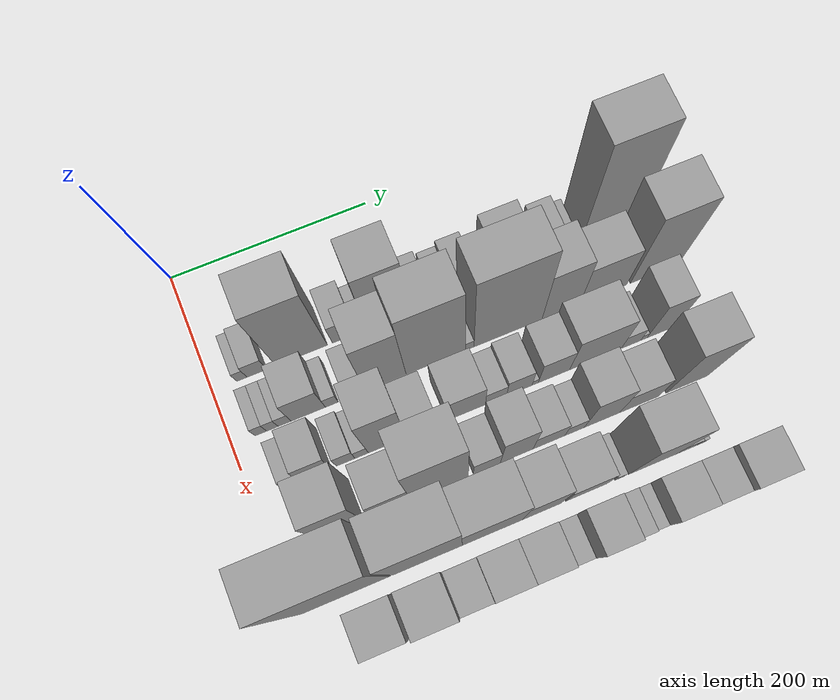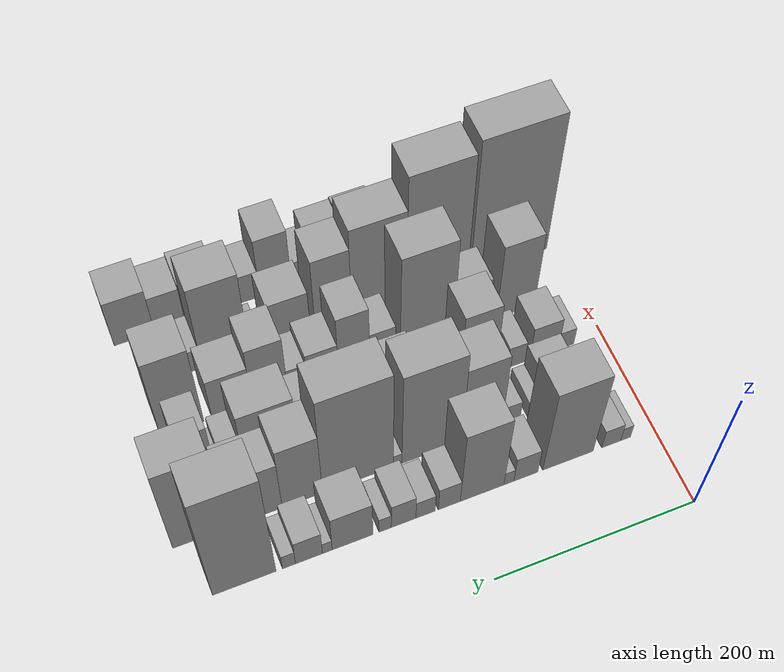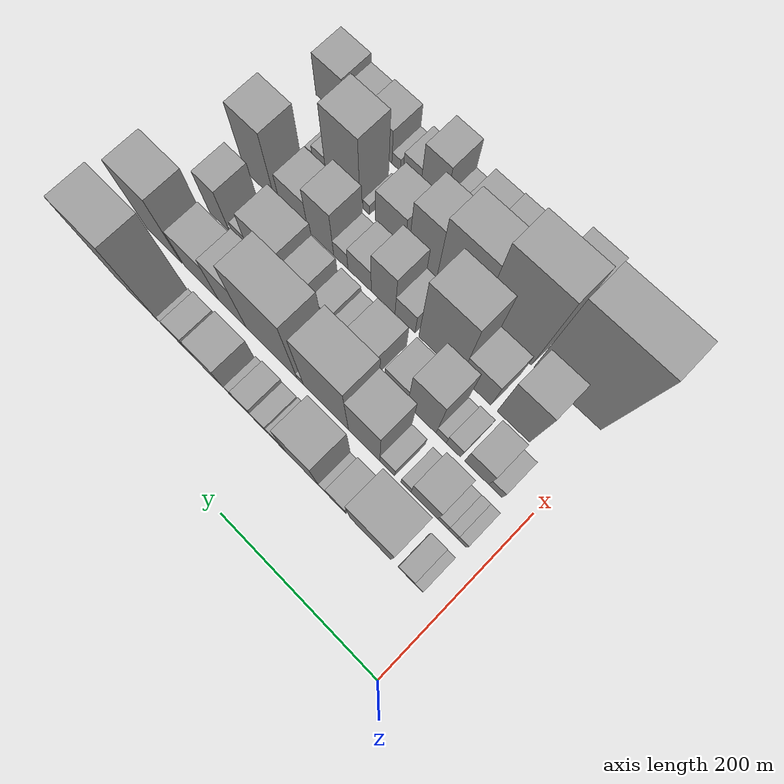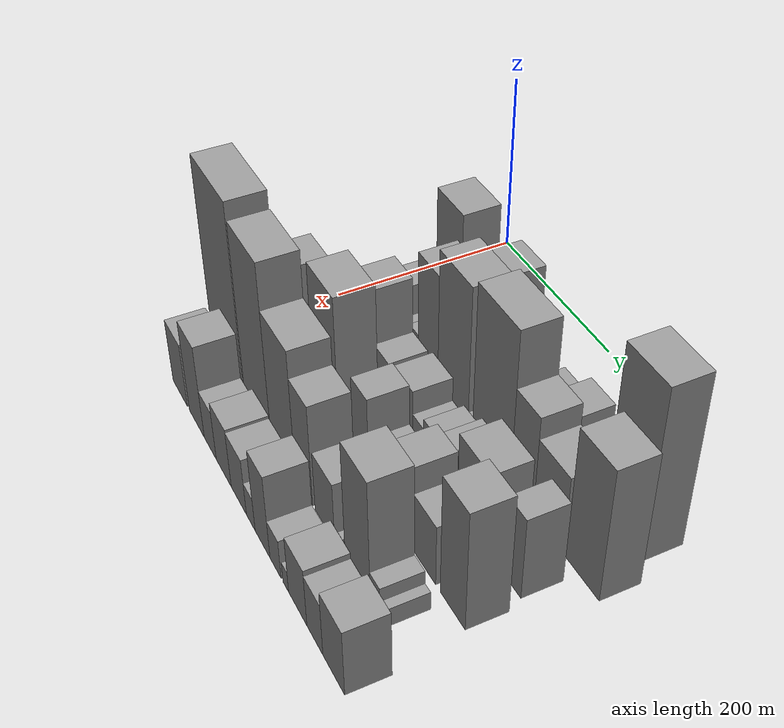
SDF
<sdf version="1.6">
 <world name="default">
  <model name="building_27">
   <static>1</static>
   <pose>100.0000 29.5351 0 0.000000 0.000000 0.000000</pose>
   <link name="link">
    <pose>0 0 12.00 0 0 0</pose>
    <collision name="collision"><geometry><box><size>40.0000 10.1037 24.0000</size></box></geometry></collision>
    <visual name="visual">
     <cast_shadows>0</cast_shadows>
     <geometry><box><size>40.0000 10.1037 24.0000</size></box></geometry>
     <material>
      <script>
       <uri>model://grey_wall/materials/scripts</uri>
       <uri>model://grey_wall/materials/textures</uri>
       <name>vrc/grey_wall</name>
      </script>
     </material>
    </visual>
   </link>
  </model>
  <model name="building_28">
   <static>1</static>
   <pose>100.0000 44.4117 0 0.000000 0.000000 0.000000</pose>
   <link name="link">
    <pose>0 0 16.50 0 0 0</pose>
    <collision name="collision"><geometry><box><size>40.0000 19.6494 33.0000</size></box></geometry></collision>
    <visual name="visual">
     <cast_shadows>0</cast_shadows>
     <geometry><box><size>40.0000 19.6494 33.0000</size></box></geometry>
     <material>
      <script>
       <uri>model://grey_wall/materials/scripts</uri>
       <uri>model://grey_wall/materials/textures</uri>
       <name>vrc/grey_wall</name>
      </script>
     </material>
    </visual>
   </link>
  </model>
  <model name="building_29">
   <static>1</static>
   <pose>100.0000 89.0298 0 0.000000 0.000000 0.000000</pose>
   <link name="link">
    <pose>0 0 73.50 0 0 0</pose>
    <collision name="collision"><geometry><box><size>40.0000 51.5868 147.0000</size></box></geometry></collision>
    <visual name="visual">
     <cast_shadows>0</cast_shadows>
     <geometry><box><size>40.0000 51.5868 147.0000</size></box></geometry>
     <material>
      <script>
       <uri>model://grey_wall/materials/scripts</uri>
       <uri>model://grey_wall/materials/textures</uri>
       <name>vrc/grey_wall</name>
      </script>
     </material>
    </visual>
   </link>
  </model>
  <model name="building_30">
   <static>1</static>
   <pose>100.0000 131.9228 0 0.000000 0.000000 0.000000</pose>
   <link name="link">
    <pose>0 0 22.50 0 0 0</pose>
    <collision name="collision"><geometry><box><size>40.0000 24.1992 45.0000</size></box></geometry></collision>
    <visual name="visual">
     <cast_shadows>0</cast_shadows>
     <geometry><box><size>40.0000 24.1992 45.0000</size></box></geometry>
     <material>
      <script>
       <uri>model://grey_wall/materials/scripts</uri>
       <uri>model://grey_wall/materials/textures</uri>
       <name>vrc/grey_wall</name>
      </script>
     </material>
    </visual>
   </link>
  </model>
  <model name="building_31">
   <static>1</static>
   <pose>100.0000 149.0816 0 0.000000 0.000000 0.000000</pose>
   <link name="link">
    <pose>0 0 12.00 0 0 0</pose>
    <collision name="collision"><geometry><box><size>40.0000 10.1185 24.0000</size></box></geometry></collision>
    <visual name="visual">
     <cast_shadows>0</cast_shadows>
     <geometry><box><size>40.0000 10.1185 24.0000</size></box></geometry>
     <material>
      <script>
       <uri>model://grey_wall/materials/scripts</uri>
       <uri>model://grey_wall/materials/textures</uri>
       <name>vrc/grey_wall</name>
      </script>
     </material>
    </visual>
   </link>
  </model>
  <model name="building_32">
   <static>1</static>
   <pose>100.0000 175.8906 0 0.000000 0.000000 0.000000</pose>
   <link name="link">
    <pose>0 0 66.00 0 0 0</pose>
    <collision name="collision"><geometry><box><size>40.0000 43.4994 132.0000</size></box></geometry></collision>
    <visual name="visual">
     <cast_shadows>0</cast_shadows>
     <geometry><box><size>40.0000 43.4994 132.0000</size></box></geometry>
     <material>
      <script>
       <uri>model://grey_wall/materials/scripts</uri>
       <uri>model://grey_wall/materials/textures</uri>
       <name>vrc/grey_wall</name>
      </script>
     </material>
    </visual>
   </link>
  </model>
  <model name="building_33">
   <static>1</static>
   <pose>100.0000 208.5232 0 0.000000 0.000000 0.000000</pose>
   <link name="link">
    <pose>0 0 21.00 0 0 0</pose>
    <collision name="collision"><geometry><box><size>40.0000 21.7659 42.0000</size></box></geometry></collision>
    <visual name="visual">
     <cast_shadows>0</cast_shadows>
     <geometry><box><size>40.0000 21.7659 42.0000</size></box></geometry>
     <material>
      <script>
       <uri>model://grey_wall/materials/scripts</uri>
       <uri>model://grey_wall/materials/textures</uri>
       <name>vrc/grey_wall</name>
      </script>
     </material>
    </visual>
   </link>
  </model>
  <model name="building_34">
   <static>1</static>
   <pose>100.0000 231.9285 0 0.000000 0.000000 0.000000</pose>
   <link name="link">
    <pose>0 0 16.50 0 0 0</pose>
    <collision name="collision"><geometry><box><size>40.0000 19.0447 33.0000</size></box></geometry></collision>
    <visual name="visual">
     <cast_shadows>0</cast_shadows>
     <geometry><box><size>40.0000 19.0447 33.0000</size></box></geometry>
     <material>
      <script>
       <uri>model://grey_wall/materials/scripts</uri>
       <uri>model://grey_wall/materials/textures</uri>
       <name>vrc/grey_wall</name>
      </script>
     </material>
    </visual>
   </link>
  </model>
  <model name="building_35">
   <static>1</static>
   <pose>100.0000 253.4220 0 0.000000 0.000000 0.000000</pose>
   <link name="link">
    <pose>0 0 22.50 0 0 0</pose>
    <collision name="collision"><geometry><box><size>40.0000 23.9424 45.0000</size></box></geometry></collision>
    <visual name="visual">
     <cast_shadows>0</cast_shadows>
     <geometry><box><size>40.0000 23.9424 45.0000</size></box></geometry>
     <material>
      <script>
       <uri>model://grey_wall/materials/scripts</uri>
       <uri>model://grey_wall/materials/textures</uri>
       <name>vrc/grey_wall</name>
      </script>
     </material>
    </visual>
   </link>
  </model>
  <model name="building_36">
   <static>1</static>
   <pose>100.0000 271.3329 0 0.000000 0.000000 0.000000</pose>
   <link name="link">
    <pose>0 0 13.50 0 0 0</pose>
    <collision name="collision"><geometry><box><size>40.0000 11.8794 27.0000</size></box></geometry></collision>
    <visual name="visual">
     <cast_shadows>0</cast_shadows>
     <geometry><box><size>40.0000 11.8794 27.0000</size></box></geometry>
     <material>
      <script>
       <uri>model://grey_wall/materials/scripts</uri>
       <uri>model://grey_wall/materials/textures</uri>
       <name>vrc/grey_wall</name>
      </script>
     </material>
    </visual>
   </link>
  </model>
  <model name="building_37">
   <static>1</static>
   <pose>100.0000 302.8294 0 0.000000 0.000000 0.000000</pose>
   <link name="link">
    <pose>0 0 33.00 0 0 0</pose>
    <collision name="collision"><geometry><box><size>40.0000 39.1136 66.0000</size></box></geometry></collision>
    <visual name="visual">
     <cast_shadows>0</cast_shadows>
     <geometry><box><size>40.0000 39.1136 66.0000</size></box></geometry>
     <material>
      <script>
       <uri>model://grey_wall/materials/scripts</uri>
       <uri>model://grey_wall/materials/textures</uri>
       <name>vrc/grey_wall</name>
      </script>
     </material>
    </visual>
   </link>
  </model>
  <model name="building_38">
   <static>1</static>
   <pose>100.0000 327.0356 0 0.000000 0.000000 0.000000</pose>
   <link name="link">
    <pose>0 0 10.50 0 0 0</pose>
    <collision name="collision"><geometry><box><size>40.0000 9.2986 21.0000</size></box></geometry></collision>
    <visual name="visual">
     <cast_shadows>0</cast_shadows>
     <geometry><box><size>40.0000 9.2986 21.0000</size></box></geometry>
     <material>
      <script>
       <uri>model://grey_wall/materials/scripts</uri>
       <uri>model://grey_wall/materials/textures</uri>
       <name>vrc/grey_wall</name>
      </script>
     </material>
    </visual>
   </link>
  </model>
  <model name="building_39">
   <static>1</static>
   <pose>100.0000 344.4830 0 0.000000 0.000000 0.000000</pose>
   <link name="link">
    <pose>0 0 22.50 0 0 0</pose>
    <collision name="collision"><geometry><box><size>40.0000 25.5962 45.0000</size></box></geometry></collision>
    <visual name="visual">
     <cast_shadows>0</cast_shadows>
     <geometry><box><size>40.0000 25.5962 45.0000</size></box></geometry>
     <material>
      <script>
       <uri>model://grey_wall/materials/scripts</uri>
       <uri>model://grey_wall/materials/textures</uri>
       <name>vrc/grey_wall</name>
      </script>
     </material>
    </visual>
   </link>
  </model>
  <model name="building_40">
   <static>1</static>
   <pose>100.0000 363.4777 0 0.000000 0.000000 0.000000</pose>
   <link name="link">
    <pose>0 0 13.50 0 0 0</pose>
    <collision name="collision"><geometry><box><size>40.0000 12.3933 27.0000</size></box></geometry></collision>
    <visual name="visual">
     <cast_shadows>0</cast_shadows>
     <geometry><box><size>40.0000 12.3933 27.0000</size></box></geometry>
     <material>
      <script>
       <uri>model://grey_wall/materials/scripts</uri>
       <uri>model://grey_wall/materials/textures</uri>
       <name>vrc/grey_wall</name>
      </script>
     </material>
    </visual>
   </link>
  </model>
  <model name="building_41">
   <static>1</static>
   <pose>100.0000 405.3680 0 0.000000 0.000000 0.000000</pose>
   <link name="link">
    <pose>0 0 97.50 0 0 0</pose>
    <collision name="collision"><geometry><box><size>40.0000 59.3873 195.0000</size></box></geometry></collision>
    <visual name="visual">
     <cast_shadows>0</cast_shadows>
     <geometry><box><size>40.0000 59.3873 195.0000</size></box></geometry>
     <material>
      <script>
       <uri>model://grey_wall/materials/scripts</uri>
       <uri>model://grey_wall/materials/textures</uri>
       <name>vrc/grey_wall</name>
      </script>
     </material>
    </visual>
   </link>
  </model>
  <model name="building_81">
   <static>1</static>
   <pose>155.0000 28.5646 0 0.000000 0.000000 0.000000</pose>
   <link name="link">
    <pose>0 0 13.50 0 0 0</pose>
    <collision name="collision"><geometry><box><size>40.0000 11.2410 27.0000</size></box></geometry></collision>
    <visual name="visual">
     <cast_shadows>0</cast_shadows>
     <geometry><box><size>40.0000 11.2410 27.0000</size></box></geometry>
     <material>
      <script>
       <uri>model://grey_wall/materials/scripts</uri>
       <uri>model://grey_wall/materials/textures</uri>
       <name>vrc/grey_wall</name>
      </script>
     </material>
    </visual>
   </link>
  </model>
  <model name="building_82">
   <static>1</static>
   <pose>155.0000 39.7942 0 0.000000 0.000000 0.000000</pose>
   <link name="link">
    <pose>0 0 13.50 0 0 0</pose>
    <collision name="collision"><geometry><box><size>40.0000 11.2180 27.0000</size></box></geometry></collision>
    <visual name="visual">
     <cast_shadows>0</cast_shadows>
     <geometry><box><size>40.0000 11.2180 27.0000</size></box></geometry>
     <material>
      <script>
       <uri>model://grey_wall/materials/scripts</uri>
       <uri>model://grey_wall/materials/textures</uri>
       <name>vrc/grey_wall</name>
      </script>
     </material>
    </visual>
   </link>
  </model>
  <model name="building_83">
   <static>1</static>
   <pose>155.0000 51.8045 0 0.000000 0.000000 0.000000</pose>
   <link name="link">
    <pose>0 0 13.50 0 0 0</pose>
    <collision name="collision"><geometry><box><size>40.0000 12.8027 27.0000</size></box></geometry></collision>
    <visual name="visual">
     <cast_shadows>0</cast_shadows>
     <geometry><box><size>40.0000 12.8027 27.0000</size></box></geometry>
     <material>
      <script>
       <uri>model://grey_wall/materials/scripts</uri>
       <uri>model://grey_wall/materials/textures</uri>
       <name>vrc/grey_wall</name>
      </script>
     </material>
    </visual>
   </link>
  </model>
  <model name="building_84">
   <static>1</static>
   <pose>155.0000 75.0886 0 0.000000 0.000000 0.000000</pose>
   <link name="link">
    <pose>0 0 31.50 0 0 0</pose>
    <collision name="collision"><geometry><box><size>40.0000 33.7656 63.0000</size></box></geometry></collision>
    <visual name="visual">
     <cast_shadows>0</cast_shadows>
     <geometry><box><size>40.0000 33.7656 63.0000</size></box></geometry>
     <material>
      <script>
       <uri>model://grey_wall/materials/scripts</uri>
       <uri>model://grey_wall/materials/textures</uri>
       <name>vrc/grey_wall</name>
      </script>
     </material>
    </visual>
   </link>
  </model>
  <model name="building_85">
   <static>1</static>
   <pose>155.0000 98.3248 0 0.000000 0.000000 0.000000</pose>
   <link name="link">
    <pose>0 0 13.50 0 0 0</pose>
    <collision name="collision"><geometry><box><size>40.0000 12.7068 27.0000</size></box></geometry></collision>
    <visual name="visual">
     <cast_shadows>0</cast_shadows>
     <geometry><box><size>40.0000 12.7068 27.0000</size></box></geometry>
     <material>
      <script>
       <uri>model://grey_wall/materials/scripts</uri>
       <uri>model://grey_wall/materials/textures</uri>
       <name>vrc/grey_wall</name>
      </script>
     </material>
    </visual>
   </link>
  </model>
  <model name="building_86">
   <static>1</static>
   <pose>155.0000 122.1822 0 0.000000 0.000000 0.000000</pose>
   <link name="link">
    <pose>0 0 18.00 0 0 0</pose>
    <collision name="collision"><geometry><box><size>40.0000 19.0079 36.0000</size></box></geometry></collision>
    <visual name="visual">
     <cast_shadows>0</cast_shadows>
     <geometry><box><size>40.0000 19.0079 36.0000</size></box></geometry>
     <material>
      <script>
       <uri>model://grey_wall/materials/scripts</uri>
       <uri>model://grey_wall/materials/textures</uri>
       <name>vrc/grey_wall</name>
      </script>
     </material>
    </visual>
   </link>
  </model>
  <model name="building_87">
   <static>1</static>
   <pose>155.0000 152.0349 0 0.000000 0.000000 0.000000</pose>
   <link name="link">
    <pose>0 0 67.50 0 0 0</pose>
    <collision name="collision"><geometry><box><size>40.0000 40.6977 135.0000</size></box></geometry></collision>
    <visual name="visual">
     <cast_shadows>0</cast_shadows>
     <geometry><box><size>40.0000 40.6977 135.0000</size></box></geometry>
     <material>
      <script>
       <uri>model://grey_wall/materials/scripts</uri>
       <uri>model://grey_wall/materials/textures</uri>
       <name>vrc/grey_wall</name>
      </script>
     </material>
    </visual>
   </link>
  </model>
  <model name="building_88">
   <static>1</static>
   <pose>155.0000 202.4002 0 0.000000 0.000000 0.000000</pose>
   <link name="link">
    <pose>0 0 82.50 0 0 0</pose>
    <collision name="collision"><geometry><box><size>40.0000 60.0328 165.0000</size></box></geometry></collision>
    <visual name="visual">
     <cast_shadows>0</cast_shadows>
     <geometry><box><size>40.0000 60.0328 165.0000</size></box></geometry>
     <material>
      <script>
       <uri>model://grey_wall/materials/scripts</uri>
       <uri>model://grey_wall/materials/textures</uri>
       <name>vrc/grey_wall</name>
      </script>
     </material>
    </visual>
   </link>
  </model>
  <model name="building_89">
   <static>1</static>
   <pose>155.0000 236.7056 0 0.000000 0.000000 0.000000</pose>
   <link name="link">
    <pose>0 0 10.50 0 0 0</pose>
    <collision name="collision"><geometry><box><size>40.0000 8.5781 21.0000</size></box></geometry></collision>
    <visual name="visual">
     <cast_shadows>0</cast_shadows>
     <geometry><box><size>40.0000 8.5781 21.0000</size></box></geometry>
     <material>
      <script>
       <uri>model://grey_wall/materials/scripts</uri>
       <uri>model://grey_wall/materials/textures</uri>
       <name>vrc/grey_wall</name>
      </script>
     </material>
    </visual>
   </link>
  </model>
  <model name="building_90">
   <static>1</static>
   <pose>155.0000 275.9135 0 0.000000 0.000000 0.000000</pose>
   <link name="link">
    <pose>0 0 88.50 0 0 0</pose>
    <collision name="collision"><geometry><box><size>40.0000 69.8377 177.0000</size></box></geometry></collision>
    <visual name="visual">
     <cast_shadows>0</cast_shadows>
     <geometry><box><size>40.0000 69.8377 177.0000</size></box></geometry>
     <material>
      <script>
       <uri>model://grey_wall/materials/scripts</uri>
       <uri>model://grey_wall/materials/textures</uri>
       <name>vrc/grey_wall</name>
      </script>
     </material>
    </visual>
   </link>
  </model>
  <model name="building_91">
   <static>1</static>
   <pose>155.0000 330.3484 0 0.000000 0.000000 0.000000</pose>
   <link name="link">
    <pose>0 0 57.00 0 0 0</pose>
    <collision name="collision"><geometry><box><size>40.0000 39.0320 114.0000</size></box></geometry></collision>
    <visual name="visual">
     <cast_shadows>0</cast_shadows>
     <geometry><box><size>40.0000 39.0320 114.0000</size></box></geometry>
     <material>
      <script>
       <uri>model://grey_wall/materials/scripts</uri>
       <uri>model://grey_wall/materials/textures</uri>
       <name>vrc/grey_wall</name>
      </script>
     </material>
    </visual>
   </link>
  </model>
  <model name="building_92">
   <static>1</static>
   <pose>155.0000 374.4311 0 0.000000 0.000000 0.000000</pose>
   <link name="link">
    <pose>0 0 45.00 0 0 0</pose>
    <collision name="collision"><geometry><box><size>40.0000 49.1333 90.0000</size></box></geometry></collision>
    <visual name="visual">
     <cast_shadows>0</cast_shadows>
     <geometry><box><size>40.0000 49.1333 90.0000</size></box></geometry>
     <material>
      <script>
       <uri>model://grey_wall/materials/scripts</uri>
       <uri>model://grey_wall/materials/textures</uri>
       <name>vrc/grey_wall</name>
      </script>
     </material>
    </visual>
   </link>
  </model>
  <model name="building_93">
   <static>1</static>
   <pose>155.0000 428.5436 0 0.000000 0.000000 0.000000</pose>
   <link name="link">
    <pose>0 0 75.00 0 0 0</pose>
    <collision name="collision"><geometry><box><size>40.0000 51.0916 150.0000</size></box></geometry></collision>
    <visual name="visual">
     <cast_shadows>0</cast_shadows>
     <geometry><box><size>40.0000 51.0916 150.0000</size></box></geometry>
     <material>
      <script>
       <uri>model://grey_wall/materials/scripts</uri>
       <uri>model://grey_wall/materials/textures</uri>
       <name>vrc/grey_wall</name>
      </script>
     </material>
    </visual>
   </link>
  </model>
  <model name="building_129">
   <static>1</static>
   <pose>210.0000 38.2741 0 0.000000 0.000000 0.000000</pose>
   <link name="link">
    <pose>0 0 15.00 0 0 0</pose>
    <collision name="collision"><geometry><box><size>40.0000 16.6015 30.0000</size></box></geometry></collision>
    <visual name="visual">
     <cast_shadows>0</cast_shadows>
     <geometry><box><size>40.0000 16.6015 30.0000</size></box></geometry>
     <material>
      <script>
       <uri>model://grey_wall/materials/scripts</uri>
       <uri>model://grey_wall/materials/textures</uri>
       <name>vrc/grey_wall</name>
      </script>
     </material>
    </visual>
   </link>
  </model>
  <model name="building_130">
   <static>1</static>
   <pose>210.0000 61.6853 0 0.000000 0.000000 0.000000</pose>
   <link name="link">
    <pose>0 0 28.50 0 0 0</pose>
    <collision name="collision"><geometry><box><size>40.0000 30.2209 57.0000</size></box></geometry></collision>
    <visual name="visual">
     <cast_shadows>0</cast_shadows>
     <geometry><box><size>40.0000 30.2209 57.0000</size></box></geometry>
     <material>
      <script>
       <uri>model://grey_wall/materials/scripts</uri>
       <uri>model://grey_wall/materials/textures</uri>
       <name>vrc/grey_wall</name>
      </script>
     </material>
    </visual>
   </link>
  </model>
  <model name="building_131">
   <static>1</static>
   <pose>210.0000 90.9158 0 0.000000 0.000000 0.000000</pose>
   <link name="link">
    <pose>0 0 18.00 0 0 0</pose>
    <collision name="collision"><geometry><box><size>40.0000 18.2402 36.0000</size></box></geometry></collision>
    <visual name="visual">
     <cast_shadows>0</cast_shadows>
     <geometry><box><size>40.0000 18.2402 36.0000</size></box></geometry>
     <material>
      <script>
       <uri>model://grey_wall/materials/scripts</uri>
       <uri>model://grey_wall/materials/textures</uri>
       <name>vrc/grey_wall</name>
      </script>
     </material>
    </visual>
   </link>
  </model>
  <model name="building_132">
   <static>1</static>
   <pose>210.0000 106.5720 0 0.000000 0.000000 0.000000</pose>
   <link name="link">
    <pose>0 0 13.50 0 0 0</pose>
    <collision name="collision"><geometry><box><size>40.0000 13.0722 27.0000</size></box></geometry></collision>
    <visual name="visual">
     <cast_shadows>0</cast_shadows>
     <geometry><box><size>40.0000 13.0722 27.0000</size></box></geometry>
     <material>
      <script>
       <uri>model://grey_wall/materials/scripts</uri>
       <uri>model://grey_wall/materials/textures</uri>
       <name>vrc/grey_wall</name>
      </script>
     </material>
    </visual>
   </link>
  </model>
  <model name="building_133">
   <static>1</static>
   <pose>210.0000 131.6312 0 0.000000 0.000000 0.000000</pose>
   <link name="link">
    <pose>0 0 61.50 0 0 0</pose>
    <collision name="collision"><geometry><box><size>40.0000 37.0461 123.0000</size></box></geometry></collision>
    <visual name="visual">
     <cast_shadows>0</cast_shadows>
     <geometry><box><size>40.0000 37.0461 123.0000</size></box></geometry>
     <material>
      <script>
       <uri>model://grey_wall/materials/scripts</uri>
       <uri>model://grey_wall/materials/textures</uri>
       <name>vrc/grey_wall</name>
      </script>
     </material>
    </visual>
   </link>
  </model>
  <model name="building_134">
   <static>1</static>
   <pose>210.0000 165.3516 0 0.000000 0.000000 0.000000</pose>
   <link name="link">
    <pose>0 0 30.00 0 0 0</pose>
    <collision name="collision"><geometry><box><size>40.0000 30.3948 60.0000</size></box></geometry></collision>
    <visual name="visual">
     <cast_shadows>0</cast_shadows>
     <geometry><box><size>40.0000 30.3948 60.0000</size></box></geometry>
     <material>
      <script>
       <uri>model://grey_wall/materials/scripts</uri>
       <uri>model://grey_wall/materials/textures</uri>
       <name>vrc/grey_wall</name>
      </script>
     </material>
    </visual>
   </link>
  </model>
  <model name="building_135">
   <static>1</static>
   <pose>210.0000 209.8594 0 0.000000 0.000000 0.000000</pose>
   <link name="link">
    <pose>0 0 33.00 0 0 0</pose>
    <collision name="collision"><geometry><box><size>40.0000 38.6208 66.0000</size></box></geometry></collision>
    <visual name="visual">
     <cast_shadows>0</cast_shadows>
     <geometry><box><size>40.0000 38.6208 66.0000</size></box></geometry>
     <material>
      <script>
       <uri>model://grey_wall/materials/scripts</uri>
       <uri>model://grey_wall/materials/textures</uri>
       <name>vrc/grey_wall</name>
      </script>
     </material>
    </visual>
   </link>
  </model>
  <model name="building_136">
   <static>1</static>
   <pose>210.0000 239.8237 0 0.000000 0.000000 0.000000</pose>
   <link name="link">
    <pose>0 0 19.50 0 0 0</pose>
    <collision name="collision"><geometry><box><size>40.0000 21.3077 39.0000</size></box></geometry></collision>
    <visual name="visual">
     <cast_shadows>0</cast_shadows>
     <geometry><box><size>40.0000 21.3077 39.0000</size></box></geometry>
     <material>
      <script>
       <uri>model://grey_wall/materials/scripts</uri>
       <uri>model://grey_wall/materials/textures</uri>
       <name>vrc/grey_wall</name>
      </script>
     </material>
    </visual>
   </link>
  </model>
  <model name="building_137">
   <static>1</static>
   <pose>210.0000 263.3612 0 0.000000 0.000000 0.000000</pose>
   <link name="link">
    <pose>0 0 25.50 0 0 0</pose>
    <collision name="collision"><geometry><box><size>40.0000 25.7672 51.0000</size></box></geometry></collision>
    <visual name="visual">
     <cast_shadows>0</cast_shadows>
     <geometry><box><size>40.0000 25.7672 51.0000</size></box></geometry>
     <material>
      <script>
       <uri>model://grey_wall/materials/scripts</uri>
       <uri>model://grey_wall/materials/textures</uri>
       <name>vrc/grey_wall</name>
      </script>
     </material>
    </visual>
   </link>
  </model>
  <model name="building_138">
   <static>1</static>
   <pose>210.0000 279.4580 0 0.000000 0.000000 0.000000</pose>
   <link name="link">
    <pose>0 0 7.50 0 0 0</pose>
    <collision name="collision"><geometry><box><size>40.0000 6.4266 15.0000</size></box></geometry></collision>
    <visual name="visual">
     <cast_shadows>0</cast_shadows>
     <geometry><box><size>40.0000 6.4266 15.0000</size></box></geometry>
     <material>
      <script>
       <uri>model://grey_wall/materials/scripts</uri>
       <uri>model://grey_wall/materials/textures</uri>
       <name>vrc/grey_wall</name>
      </script>
     </material>
    </visual>
   </link>
  </model>
  <model name="building_139">
   <static>1</static>
   <pose>210.0000 298.5849 0 0.000000 0.000000 0.000000</pose>
   <link name="link">
    <pose>0 0 31.50 0 0 0</pose>
    <collision name="collision"><geometry><box><size>40.0000 31.8272 63.0000</size></box></geometry></collision>
    <visual name="visual">
     <cast_shadows>0</cast_shadows>
     <geometry><box><size>40.0000 31.8272 63.0000</size></box></geometry>
     <material>
      <script>
       <uri>model://grey_wall/materials/scripts</uri>
       <uri>model://grey_wall/materials/textures</uri>
       <name>vrc/grey_wall</name>
      </script>
     </material>
    </visual>
   </link>
  </model>
  <model name="building_140">
   <static>1</static>
   <pose>210.0000 341.1894 0 0.000000 0.000000 0.000000</pose>
   <link name="link">
    <pose>0 0 45.00 0 0 0</pose>
    <collision name="collision"><geometry><box><size>40.0000 53.3818 90.0000</size></box></geometry></collision>
    <visual name="visual">
     <cast_shadows>0</cast_shadows>
     <geometry><box><size>40.0000 53.3818 90.0000</size></box></geometry>
     <material>
      <script>
       <uri>model://grey_wall/materials/scripts</uri>
       <uri>model://grey_wall/materials/textures</uri>
       <name>vrc/grey_wall</name>
      </script>
     </material>
    </visual>
   </link>
  </model>
  <model name="building_141">
   <static>1</static>
   <pose>210.0000 377.9662 0 0.000000 0.000000 0.000000</pose>
   <link name="link">
    <pose>0 0 18.00 0 0 0</pose>
    <collision name="collision"><geometry><box><size>40.0000 20.1720 36.0000</size></box></geometry></collision>
    <visual name="visual">
     <cast_shadows>0</cast_shadows>
     <geometry><box><size>40.0000 20.1720 36.0000</size></box></geometry>
     <material>
      <script>
       <uri>model://grey_wall/materials/scripts</uri>
       <uri>model://grey_wall/materials/textures</uri>
       <name>vrc/grey_wall</name>
      </script>
     </material>
    </visual>
   </link>
  </model>
  <model name="building_142">
   <static>1</static>
   <pose>210.0000 391.2594 0 0.000000 0.000000 0.000000</pose>
   <link name="link">
    <pose>0 0 7.50 0 0 0</pose>
    <collision name="collision"><geometry><box><size>40.0000 6.4143 15.0000</size></box></geometry></collision>
    <visual name="visual">
     <cast_shadows>0</cast_shadows>
     <geometry><box><size>40.0000 6.4143 15.0000</size></box></geometry>
     <material>
      <script>
       <uri>model://grey_wall/materials/scripts</uri>
       <uri>model://grey_wall/materials/textures</uri>
       <name>vrc/grey_wall</name>
      </script>
     </material>
    </visual>
   </link>
  </model>
  <model name="building_143">
   <static>1</static>
   <pose>210.0000 408.9471 0 0.000000 0.000000 0.000000</pose>
   <link name="link">
    <pose>0 0 46.50 0 0 0</pose>
    <collision name="collision"><geometry><box><size>40.0000 28.9612 93.0000</size></box></geometry></collision>
    <visual name="visual">
     <cast_shadows>0</cast_shadows>
     <geometry><box><size>40.0000 28.9612 93.0000</size></box></geometry>
     <material>
      <script>
       <uri>model://grey_wall/materials/scripts</uri>
       <uri>model://grey_wall/materials/textures</uri>
       <name>vrc/grey_wall</name>
      </script>
     </material>
    </visual>
   </link>
  </model>
  <model name="building_183">
   <static>1</static>
   <pose>265.0000 66.6333 0 0.000000 0.000000 0.000000</pose>
   <link name="link">
    <pose>0 0 61.50 0 0 0</pose>
    <collision name="collision"><geometry><box><size>40.0000 41.0344 123.0000</size></box></geometry></collision>
    <visual name="visual">
     <cast_shadows>0</cast_shadows>
     <geometry><box><size>40.0000 41.0344 123.0000</size></box></geometry>
     <material>
      <script>
       <uri>model://grey_wall/materials/scripts</uri>
       <uri>model://grey_wall/materials/textures</uri>
       <name>vrc/grey_wall</name>
      </script>
     </material>
    </visual>
   </link>
  </model>
  <model name="building_184">
   <static>1</static>
   <pose>265.0000 114.1565 0 0.000000 0.000000 0.000000</pose>
   <link name="link">
    <pose>0 0 37.50 0 0 0</pose>
    <collision name="collision"><geometry><box><size>40.0000 38.0119 75.0000</size></box></geometry></collision>
    <visual name="visual">
     <cast_shadows>0</cast_shadows>
     <geometry><box><size>40.0000 38.0119 75.0000</size></box></geometry>
     <material>
      <script>
       <uri>model://grey_wall/materials/scripts</uri>
       <uri>model://grey_wall/materials/textures</uri>
       <name>vrc/grey_wall</name>
      </script>
     </material>
    </visual>
   </link>
  </model>
  <model name="building_185">
   <static>1</static>
   <pose>265.0000 161.0077 0 0.000000 0.000000 0.000000</pose>
   <link name="link">
    <pose>0 0 81.00 0 0 0</pose>
    <collision name="collision"><geometry><box><size>40.0000 55.6905 162.0000</size></box></geometry></collision>
    <visual name="visual">
     <cast_shadows>0</cast_shadows>
     <geometry><box><size>40.0000 55.6905 162.0000</size></box></geometry>
     <material>
      <script>
       <uri>model://grey_wall/materials/scripts</uri>
       <uri>model://grey_wall/materials/textures</uri>
       <name>vrc/grey_wall</name>
      </script>
     </material>
    </visual>
   </link>
  </model>
  <model name="building_186">
   <static>1</static>
   <pose>265.0000 207.2361 0 0.000000 0.000000 0.000000</pose>
   <link name="link">
    <pose>0 0 25.50 0 0 0</pose>
    <collision name="collision"><geometry><box><size>40.0000 26.7664 51.0000</size></box></geometry></collision>
    <visual name="visual">
     <cast_shadows>0</cast_shadows>
     <geometry><box><size>40.0000 26.7664 51.0000</size></box></geometry>
     <material>
      <script>
       <uri>model://grey_wall/materials/scripts</uri>
       <uri>model://grey_wall/materials/textures</uri>
       <name>vrc/grey_wall</name>
      </script>
     </material>
    </visual>
   </link>
  </model>
  <model name="building_187">
   <static>1</static>
   <pose>265.0000 236.7487 0 0.000000 0.000000 0.000000</pose>
   <link name="link">
    <pose>0 0 49.50 0 0 0</pose>
    <collision name="collision"><geometry><box><size>40.0000 32.2587 99.0000</size></box></geometry></collision>
    <visual name="visual">
     <cast_shadows>0</cast_shadows>
     <geometry><box><size>40.0000 32.2587 99.0000</size></box></geometry>
     <material>
      <script>
       <uri>model://grey_wall/materials/scripts</uri>
       <uri>model://grey_wall/materials/textures</uri>
       <name>vrc/grey_wall</name>
      </script>
     </material>
    </visual>
   </link>
  </model>
  <model name="building_188">
   <static>1</static>
   <pose>265.0000 268.8286 0 0.000000 0.000000 0.000000</pose>
   <link name="link">
    <pose>0 0 27.00 0 0 0</pose>
    <collision name="collision"><geometry><box><size>40.0000 31.9012 54.0000</size></box></geometry></collision>
    <visual name="visual">
     <cast_shadows>0</cast_shadows>
     <geometry><box><size>40.0000 31.9012 54.0000</size></box></geometry>
     <material>
      <script>
       <uri>model://grey_wall/materials/scripts</uri>
       <uri>model://grey_wall/materials/textures</uri>
       <name>vrc/grey_wall</name>
      </script>
     </material>
    </visual>
   </link>
  </model>
  <model name="building_189">
   <static>1</static>
   <pose>265.0000 294.6045 0 0.000000 0.000000 0.000000</pose>
   <link name="link">
    <pose>0 0 19.50 0 0 0</pose>
    <collision name="collision"><geometry><box><size>40.0000 19.6506 39.0000</size></box></geometry></collision>
    <visual name="visual">
     <cast_shadows>0</cast_shadows>
     <geometry><box><size>40.0000 19.6506 39.0000</size></box></geometry>
     <material>
      <script>
       <uri>model://grey_wall/materials/scripts</uri>
       <uri>model://grey_wall/materials/textures</uri>
       <name>vrc/grey_wall</name>
      </script>
     </material>
    </visual>
   </link>
  </model>
  <model name="building_190">
   <static>1</static>
   <pose>265.0000 322.3091 0 0.000000 0.000000 0.000000</pose>
   <link name="link">
    <pose>0 0 49.50 0 0 0</pose>
    <collision name="collision"><geometry><box><size>40.0000 35.7586 99.0000</size></box></geometry></collision>
    <visual name="visual">
     <cast_shadows>0</cast_shadows>
     <geometry><box><size>40.0000 35.7586 99.0000</size></box></geometry>
     <material>
      <script>
       <uri>model://grey_wall/materials/scripts</uri>
       <uri>model://grey_wall/materials/textures</uri>
       <name>vrc/grey_wall</name>
      </script>
     </material>
    </visual>
   </link>
  </model>
  <model name="building_191">
   <static>1</static>
   <pose>265.0000 360.1919 0 0.000000 0.000000 0.000000</pose>
   <link name="link">
    <pose>0 0 34.50 0 0 0</pose>
    <collision name="collision"><geometry><box><size>40.0000 40.0070 69.0000</size></box></geometry></collision>
    <visual name="visual">
     <cast_shadows>0</cast_shadows>
     <geometry><box><size>40.0000 40.0070 69.0000</size></box></geometry>
     <material>
      <script>
       <uri>model://grey_wall/materials/scripts</uri>
       <uri>model://grey_wall/materials/textures</uri>
       <name>vrc/grey_wall</name>
      </script>
     </material>
    </visual>
   </link>
  </model>
  <model name="building_192">
   <static>1</static>
   <pose>265.0000 409.4947 0 0.000000 0.000000 0.000000</pose>
   <link name="link">
    <pose>0 0 67.50 0 0 0</pose>
    <collision name="collision"><geometry><box><size>40.0000 42.5987 135.0000</size></box></geometry></collision>
    <visual name="visual">
     <cast_shadows>0</cast_shadows>
     <geometry><box><size>40.0000 42.5987 135.0000</size></box></geometry>
     <material>
      <script>
       <uri>model://grey_wall/materials/scripts</uri>
       <uri>model://grey_wall/materials/textures</uri>
       <name>vrc/grey_wall</name>
      </script>
     </material>
    </visual>
   </link>
  </model>
  <model name="building_231">
   <static>1</static>
   <pose>320.0000 49.1157 0 0.000000 0.000000 0.000000</pose>
   <link name="link">
    <pose>0 0 108.00 0 0 0</pose>
    <collision name="collision"><geometry><box><size>40.0000 83.8762 216.0000</size></box></geometry></collision>
    <visual name="visual">
     <cast_shadows>0</cast_shadows>
     <geometry><box><size>40.0000 83.8762 216.0000</size></box></geometry>
     <material>
      <script>
       <uri>model://grey_wall/materials/scripts</uri>
       <uri>model://grey_wall/materials/textures</uri>
       <name>vrc/grey_wall</name>
      </script>
     </material>
    </visual>
   </link>
  </model>
  <model name="building_232">
   <static>1</static>
   <pose>320.0000 126.9676 0 0.000000 0.000000 0.000000</pose>
   <link name="link">
    <pose>0 0 99.00 0 0 0</pose>
    <collision name="collision"><geometry><box><size>40.0000 65.8274 198.0000</size></box></geometry></collision>
    <visual name="visual">
     <cast_shadows>0</cast_shadows>
     <geometry><box><size>40.0000 65.8274 198.0000</size></box></geometry>
     <material>
      <script>
       <uri>model://grey_wall/materials/scripts</uri>
       <uri>model://grey_wall/materials/textures</uri>
       <name>vrc/grey_wall</name>
      </script>
     </material>
    </visual>
   </link>
  </model>
  <model name="building_233">
   <static>1</static>
   <pose>320.0000 188.8703 0 0.000000 0.000000 0.000000</pose>
   <link name="link">
    <pose>0 0 73.50 0 0 0</pose>
    <collision name="collision"><geometry><box><size>40.0000 57.9780 147.0000</size></box></geometry></collision>
    <visual name="visual">
     <cast_shadows>0</cast_shadows>
     <geometry><box><size>40.0000 57.9780 147.0000</size></box></geometry>
     <material>
      <script>
       <uri>model://grey_wall/materials/scripts</uri>
       <uri>model://grey_wall/materials/textures</uri>
       <name>vrc/grey_wall</name>
      </script>
     </material>
    </visual>
   </link>
  </model>
  <model name="building_234">
   <static>1</static>
   <pose>320.0000 236.9405 0 0.000000 0.000000 0.000000</pose>
   <link name="link">
    <pose>0 0 58.50 0 0 0</pose>
    <collision name="collision"><geometry><box><size>40.0000 38.1625 117.0000</size></box></geometry></collision>
    <visual name="visual">
     <cast_shadows>0</cast_shadows>
     <geometry><box><size>40.0000 38.1625 117.0000</size></box></geometry>
     <material>
      <script>
       <uri>model://grey_wall/materials/scripts</uri>
       <uri>model://grey_wall/materials/textures</uri>
       <name>vrc/grey_wall</name>
      </script>
     </material>
    </visual>
   </link>
  </model>
  <model name="building_235">
   <static>1</static>
   <pose>320.0000 281.5710 0 0.000000 0.000000 0.000000</pose>
   <link name="link">
    <pose>0 0 34.50 0 0 0</pose>
    <collision name="collision"><geometry><box><size>40.0000 41.0984 69.0000</size></box></geometry></collision>
    <visual name="visual">
     <cast_shadows>0</cast_shadows>
     <geometry><box><size>40.0000 41.0984 69.0000</size></box></geometry>
     <material>
      <script>
       <uri>model://grey_wall/materials/scripts</uri>
       <uri>model://grey_wall/materials/textures</uri>
       <name>vrc/grey_wall</name>
      </script>
     </material>
    </visual>
   </link>
  </model>
  <model name="building_236">
   <static>1</static>
   <pose>320.0000 314.8189 0 0.000000 0.000000 0.000000</pose>
   <link name="link">
    <pose>0 0 10.50 0 0 0</pose>
    <collision name="collision"><geometry><box><size>40.0000 9.3974 21.0000</size></box></geometry></collision>
    <visual name="visual">
     <cast_shadows>0</cast_shadows>
     <geometry><box><size>40.0000 9.3974 21.0000</size></box></geometry>
     <material>
      <script>
       <uri>model://grey_wall/materials/scripts</uri>
       <uri>model://grey_wall/materials/textures</uri>
       <name>vrc/grey_wall</name>
      </script>
     </material>
    </visual>
   </link>
  </model>
  <model name="building_237">
   <static>1</static>
   <pose>320.0000 347.7229 0 0.000000 0.000000 0.000000</pose>
   <link name="link">
    <pose>0 0 69.00 0 0 0</pose>
    <collision name="collision"><geometry><box><size>40.0000 48.4106 138.0000</size></box></geometry></collision>
    <visual name="visual">
     <cast_shadows>0</cast_shadows>
     <geometry><box><size>40.0000 48.4106 138.0000</size></box></geometry>
     <material>
      <script>
       <uri>model://grey_wall/materials/scripts</uri>
       <uri>model://grey_wall/materials/textures</uri>
       <name>vrc/grey_wall</name>
      </script>
     </material>
    </visual>
   </link>
  </model>
  <model name="building_238">
   <static>1</static>
   <pose>320.0000 381.2087 0 0.000000 0.000000 0.000000</pose>
   <link name="link">
    <pose>0 0 18.00 0 0 0</pose>
    <collision name="collision"><geometry><box><size>40.0000 18.5609 36.0000</size></box></geometry></collision>
    <visual name="visual">
     <cast_shadows>0</cast_shadows>
     <geometry><box><size>40.0000 18.5609 36.0000</size></box></geometry>
     <material>
      <script>
       <uri>model://grey_wall/materials/scripts</uri>
       <uri>model://grey_wall/materials/textures</uri>
       <name>vrc/grey_wall</name>
      </script>
     </material>
    </visual>
   </link>
  </model>
  <model name="building_239">
   <static>1</static>
   <pose>320.0000 395.4727 0 0.000000 0.000000 0.000000</pose>
   <link name="link">
    <pose>0 0 10.50 0 0 0</pose>
    <collision name="collision"><geometry><box><size>40.0000 9.9671 21.0000</size></box></geometry></collision>
    <visual name="visual">
     <cast_shadows>0</cast_shadows>
     <geometry><box><size>40.0000 9.9671 21.0000</size></box></geometry>
     <material>
      <script>
       <uri>model://grey_wall/materials/scripts</uri>
       <uri>model://grey_wall/materials/textures</uri>
       <name>vrc/grey_wall</name>
      </script>
     </material>
    </visual>
   </link>
  </model>
  <model name="building_272">
   <static>1</static>
   <pose>375.0000 68.5802 0 0.000000 0.000000 0.000000</pose>
   <link name="link">
    <pose>0 0 37.50 0 0 0</pose>
    <collision name="collision"><geometry><box><size>40.0000 40.6169 75.0000</size></box></geometry></collision>
    <visual name="visual">
     <cast_shadows>0</cast_shadows>
     <geometry><box><size>40.0000 40.6169 75.0000</size></box></geometry>
     <material>
      <script>
       <uri>model://grey_wall/materials/scripts</uri>
       <uri>model://grey_wall/materials/textures</uri>
       <name>vrc/grey_wall</name>
      </script>
     </material>
    </visual>
   </link>
  </model>
  <model name="building_273">
   <static>1</static>
   <pose>375.0000 114.8491 0 0.000000 0.000000 0.000000</pose>
   <link name="link">
    <pose>0 0 54.00 0 0 0</pose>
    <collision name="collision"><geometry><box><size>40.0000 39.9209 108.0000</size></box></geometry></collision>
    <visual name="visual">
     <cast_shadows>0</cast_shadows>
     <geometry><box><size>40.0000 39.9209 108.0000</size></box></geometry>
     <material>
      <script>
       <uri>model://grey_wall/materials/scripts</uri>
       <uri>model://grey_wall/materials/textures</uri>
       <name>vrc/grey_wall</name>
      </script>
     </material>
    </visual>
   </link>
  </model>
  <model name="building_274">
   <static>1</static>
   <pose>375.0000 150.4692 0 0.000000 0.000000 0.000000</pose>
   <link name="link">
    <pose>0 0 28.50 0 0 0</pose>
    <collision name="collision"><geometry><box><size>40.0000 31.3191 57.0000</size></box></geometry></collision>
    <visual name="visual">
     <cast_shadows>0</cast_shadows>
     <geometry><box><size>40.0000 31.3191 57.0000</size></box></geometry>
     <material>
      <script>
       <uri>model://grey_wall/materials/scripts</uri>
       <uri>model://grey_wall/materials/textures</uri>
       <name>vrc/grey_wall</name>
      </script>
     </material>
    </visual>
   </link>
  </model>
  <model name="building_275">
   <static>1</static>
   <pose>375.0000 184.8478 0 0.000000 0.000000 0.000000</pose>
   <link name="link">
    <pose>0 0 34.50 0 0 0</pose>
    <collision name="collision"><geometry><box><size>40.0000 37.4381 69.0000</size></box></geometry></collision>
    <visual name="visual">
     <cast_shadows>0</cast_shadows>
     <geometry><box><size>40.0000 37.4381 69.0000</size></box></geometry>
     <material>
      <script>
       <uri>model://grey_wall/materials/scripts</uri>
       <uri>model://grey_wall/materials/textures</uri>
       <name>vrc/grey_wall</name>
      </script>
     </material>
    </visual>
   </link>
  </model>
  <model name="building_276">
   <static>1</static>
   <pose>375.0000 221.8227 0 0.000000 0.000000 0.000000</pose>
   <link name="link">
    <pose>0 0 33.00 0 0 0</pose>
    <collision name="collision"><geometry><box><size>40.0000 36.5117 66.0000</size></box></geometry></collision>
    <visual name="visual">
     <cast_shadows>0</cast_shadows>
     <geometry><box><size>40.0000 36.5117 66.0000</size></box></geometry>
     <material>
      <script>
       <uri>model://grey_wall/materials/scripts</uri>
       <uri>model://grey_wall/materials/textures</uri>
       <name>vrc/grey_wall</name>
      </script>
     </material>
    </visual>
   </link>
  </model>
  <model name="building_277">
   <static>1</static>
   <pose>375.0000 250.1624 0 0.000000 0.000000 0.000000</pose>
   <link name="link">
    <pose>0 0 19.50 0 0 0</pose>
    <collision name="collision"><geometry><box><size>40.0000 20.1676 39.0000</size></box></geometry></collision>
    <visual name="visual">
     <cast_shadows>0</cast_shadows>
     <geometry><box><size>40.0000 20.1676 39.0000</size></box></geometry>
     <material>
      <script>
       <uri>model://grey_wall/materials/scripts</uri>
       <uri>model://grey_wall/materials/textures</uri>
       <name>vrc/grey_wall</name>
      </script>
     </material>
    </visual>
   </link>
  </model>
  <model name="building_278">
   <static>1</static>
   <pose>375.0000 276.9210 0 0.000000 0.000000 0.000000</pose>
   <link name="link">
    <pose>0 0 48.00 0 0 0</pose>
    <collision name="collision"><geometry><box><size>40.0000 33.3498 96.0000</size></box></geometry></collision>
    <visual name="visual">
     <cast_shadows>0</cast_shadows>
     <geometry><box><size>40.0000 33.3498 96.0000</size></box></geometry>
     <material>
      <script>
       <uri>model://grey_wall/materials/scripts</uri>
       <uri>model://grey_wall/materials/textures</uri>
       <name>vrc/grey_wall</name>
      </script>
     </material>
    </visual>
   </link>
  </model>
  <model name="building_279">
   <static>1</static>
   <pose>375.0000 305.6330 0 0.000000 0.000000 0.000000</pose>
   <link name="link">
    <pose>0 0 22.50 0 0 0</pose>
    <collision name="collision"><geometry><box><size>40.0000 24.0741 45.0000</size></box></geometry></collision>
    <visual name="visual">
     <cast_shadows>0</cast_shadows>
     <geometry><box><size>40.0000 24.0741 45.0000</size></box></geometry>
     <material>
      <script>
       <uri>model://grey_wall/materials/scripts</uri>
       <uri>model://grey_wall/materials/textures</uri>
       <name>vrc/grey_wall</name>
      </script>
     </material>
    </visual>
   </link>
  </model>
  <model name="building_280">
   <static>1</static>
   <pose>375.0000 327.5738 0 0.000000 0.000000 0.000000</pose>
   <link name="link">
    <pose>0 0 12.00 0 0 0</pose>
    <collision name="collision"><geometry><box><size>40.0000 11.8075 24.0000</size></box></geometry></collision>
    <visual name="visual">
     <cast_shadows>0</cast_shadows>
     <geometry><box><size>40.0000 11.8075 24.0000</size></box></geometry>
     <material>
      <script>
       <uri>model://grey_wall/materials/scripts</uri>
       <uri>model://grey_wall/materials/textures</uri>
       <name>vrc/grey_wall</name>
      </script>
     </material>
    </visual>
   </link>
  </model>
  <model name="building_281">
   <static>1</static>
   <pose>375.0000 352.2551 0 0.000000 0.000000 0.000000</pose>
   <link name="link">
    <pose>0 0 33.00 0 0 0</pose>
    <collision name="collision"><geometry><box><size>40.0000 37.5550 66.0000</size></box></geometry></collision>
    <visual name="visual">
     <cast_shadows>0</cast_shadows>
     <geometry><box><size>40.0000 37.5550 66.0000</size></box></geometry>
     <material>
      <script>
       <uri>model://grey_wall/materials/scripts</uri>
       <uri>model://grey_wall/materials/textures</uri>
       <name>vrc/grey_wall</name>
      </script>
     </material>
    </visual>
   </link>
  </model>
  <model name="building_282">
   <static>1</static>
   <pose>375.0000 386.6985 0 0.000000 0.000000 0.000000</pose>
   <link name="link">
    <pose>0 0 30.00 0 0 0</pose>
    <collision name="collision"><geometry><box><size>40.0000 31.3318 60.0000</size></box></geometry></collision>
    <visual name="visual">
     <cast_shadows>0</cast_shadows>
     <geometry><box><size>40.0000 31.3318 60.0000</size></box></geometry>
     <material>
      <script>
       <uri>model://grey_wall/materials/scripts</uri>
       <uri>model://grey_wall/materials/textures</uri>
       <name>vrc/grey_wall</name>
      </script>
     </material>
    </visual>
   </link>
  </model>
  <model name="building_283">
   <static>1</static>
   <pose>375.0000 422.7312 0 0.000000 0.000000 0.000000</pose>
   <link name="link">
    <pose>0 0 37.50 0 0 0</pose>
    <collision name="collision"><geometry><box><size>40.0000 40.7337 75.0000</size></box></geometry></collision>
    <visual name="visual">
     <cast_shadows>0</cast_shadows>
     <geometry><box><size>40.0000 40.7337 75.0000</size></box></geometry>
     <material>
      <script>
       <uri>model://grey_wall/materials/scripts</uri>
       <uri>model://grey_wall/materials/textures</uri>
       <name>vrc/grey_wall</name>
      </script>
     </material>
    </visual>
   </link>
  </model>
 </world>
</sdf>
